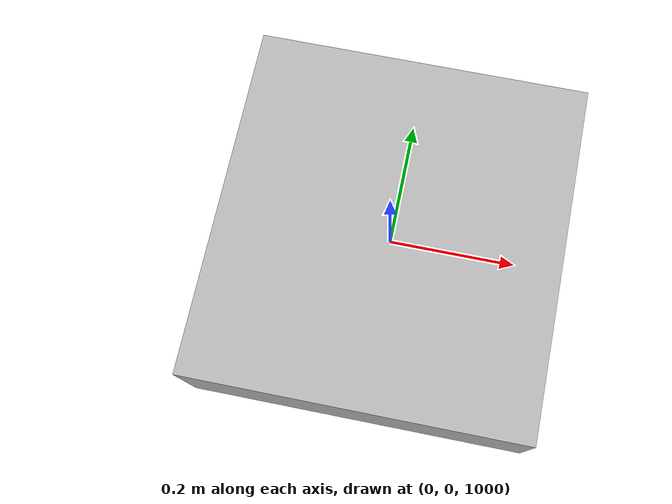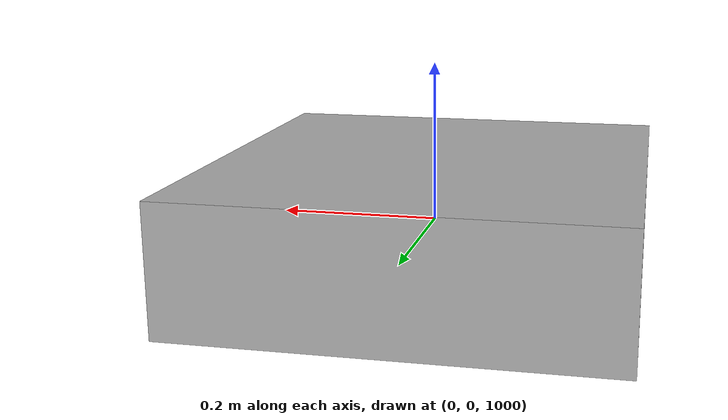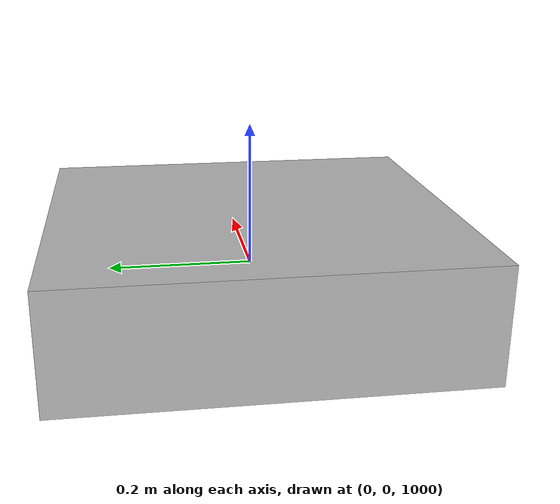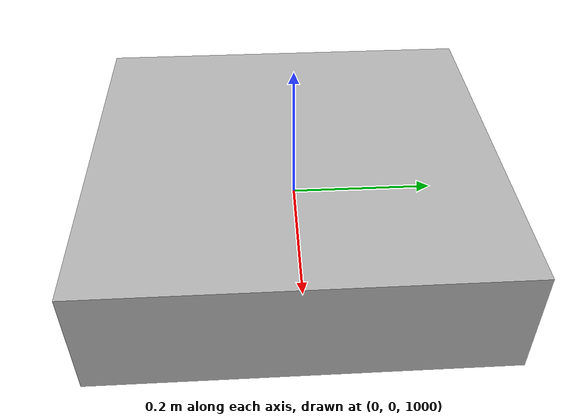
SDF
<?xml version="1.0"?>
<sdf version="1.6">
  <world name="gravity_planar_drive_test">
    <physics type="ode">
      <max_step_size>0.001</max_step_size>
      <real_time_factor>1.0</real_time_factor>
      <real_time_update_rate>1000</real_time_update_rate>
    </physics>

    <include>
      <uri>model://ground_plane</uri>
    </include>

    <model name="falling_base">
      <pose>0 0 1000 0 0 0</pose>
      <link name="base_link">
        <inertial>
          <mass>10.0</mass>
          <inertia>
            <ixx>0.1557</ixx>
            <iyy>0.1407</iyy>
            <izz>0.2730</izz>
            <ixy>0</ixy>
            <ixz>0</ixz>
            <iyz>0</iyz>
          </inertia>
        </inertial>
        <collision name="collision">
          <geometry>
            <box>
              <size>0.53 0.56 0.16</size>
            </box>
          </geometry>
        </collision>
        <visual name="visual">
          <geometry>
            <box>
              <size>0.53 0.56 0.16</size>
            </box>
          </geometry>
        </visual>
      </link>

      <plugin name="gravity_planar_drive"
              filename="libgazebo_ros_gravity_planar_drive.so">
        <update_rate>100</update_rate>
        <publish_rate>50</publish_rate>
        <cmd_vel>cmd_vel</cmd_vel>
        <odometry>odom</odometry>
        <odometry_frame>odom</odometry_frame>
        <robot_base_frame>base_link</robot_base_frame>
        <publish_odom>true</publish_odom>
        <publish_odom_tf>true</publish_odom_tf>
      </plugin>
    </model>

  </world>
</sdf>
